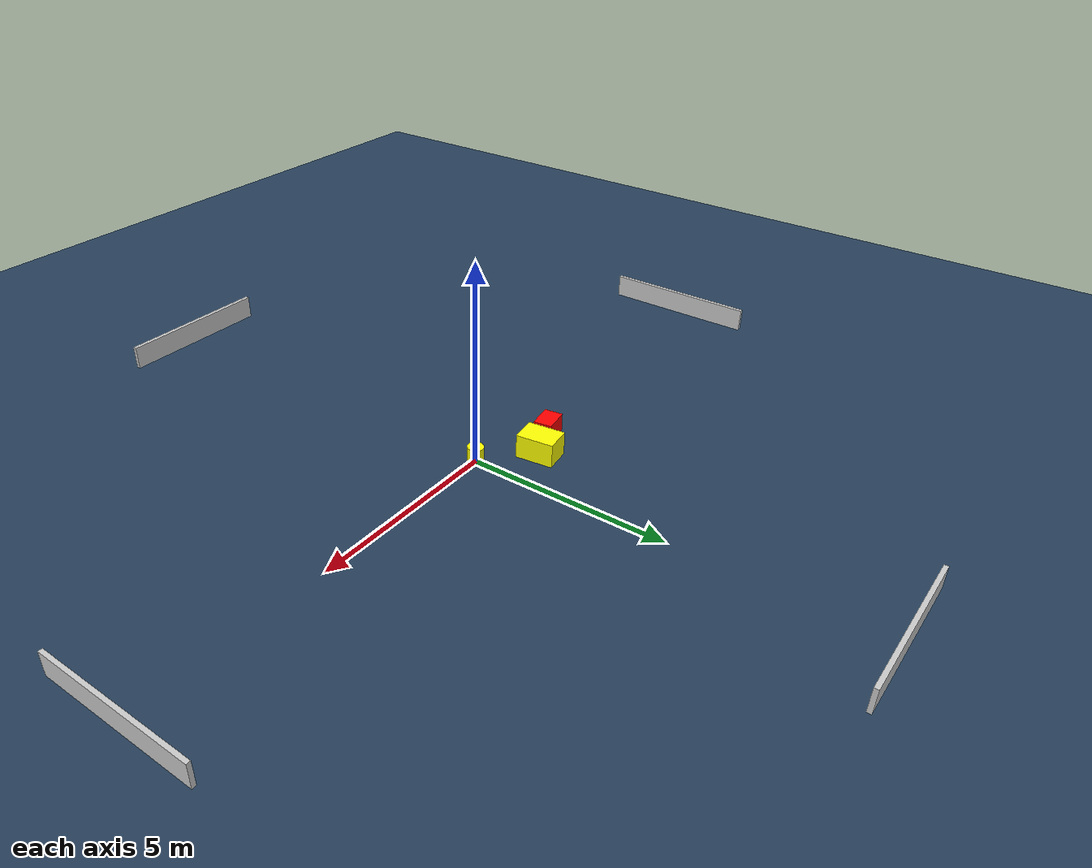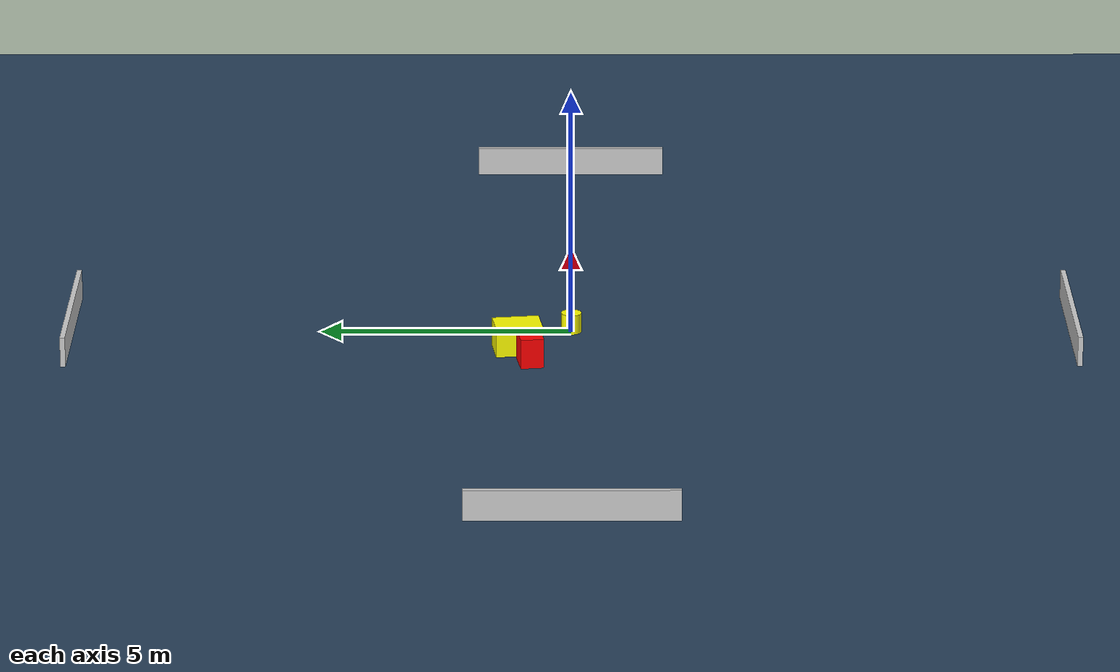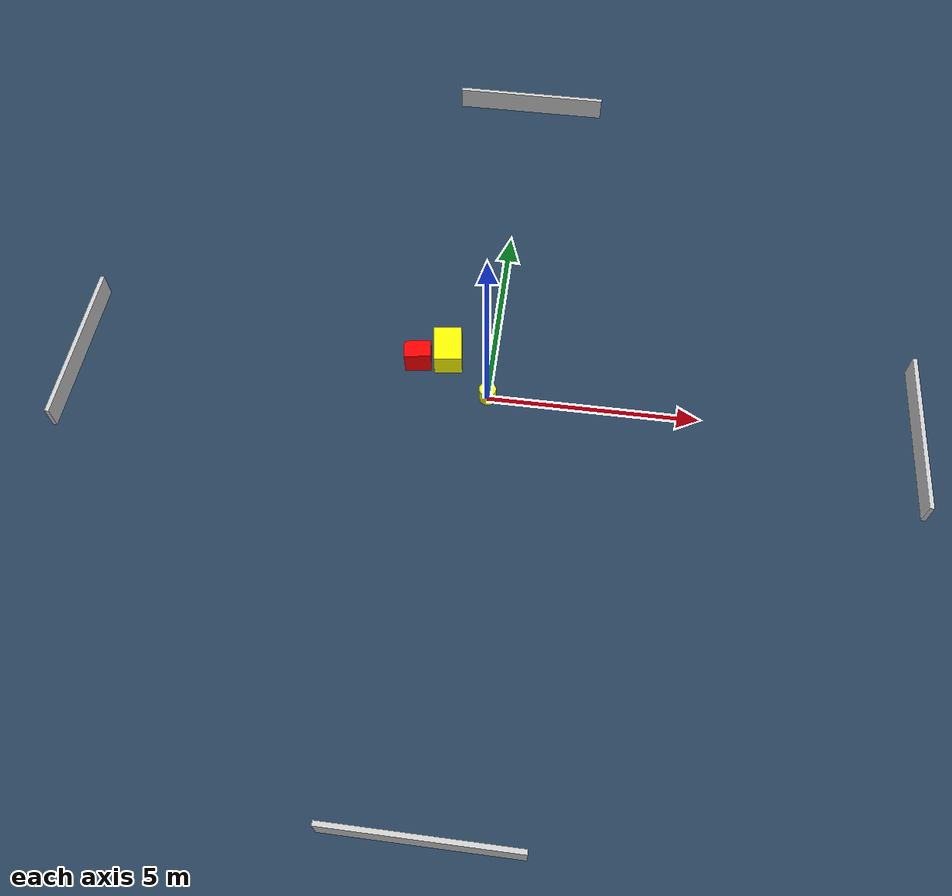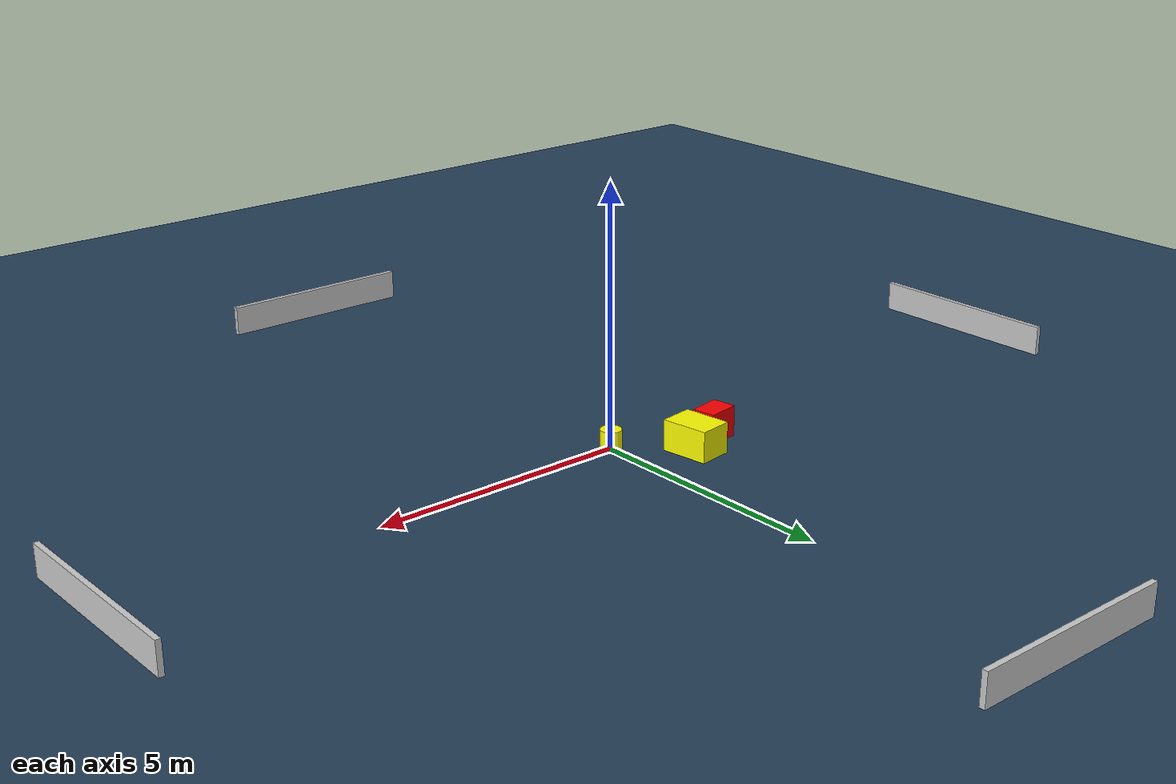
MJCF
<?xml version="1.0" ?>
<mujoco model="generated_environment">
  <option timestep="0.01" integrator="RK4" cone="elliptic"/>
  <default>
    <geom density="1"/>
  </default>
  <asset>
    <texture builtin="gradient" height="3072" name="skybox" rgb1="0.3 0.5 0.7" rgb2="0 0 0" type="skybox" width="512"/>
    <texture builtin="checker" height="300" name="groundplane" rgb1="0.2 0.3 0.4" rgb2="0.1 0.2 0.3" type="2d" width="300"/>
    <material name="groundplane" reflectance="0.2" texrepeat="5 5" texture="groundplane"/>
  </asset>
  <worldbody>
    <light dir="0 0 -1" directional="true" pos="0 0 1.5"/>
    <geom condim="3" friction="0.5 0.005 0.001" material="groundplane" name="floor" pos="0 0 0" size="0 0 0.05" type="plane"/>
    <body name="walls">
      <geom name="wall_1" condim="4" pos="-10.0 0.0 0.3" rgba="0.800000011920929 0.800000011920929 0.800000011920929 1.0" size="0.05 2.0 0.3" type="box"/>
      <geom name="wall_2" condim="4" pos="10.0 0.0 0.3" rgba="0.800000011920929 0.800000011920929 0.800000011920929 1.0" size="0.05 2.0 0.3" type="box"/>
      <geom name="wall_3" condim="4" pos="0.0 -10.0 0.3" rgba="0.800000011920929 0.800000011920929 0.800000011920929 1.0" size="2.0 0.05 0.3" type="box"/>
      <geom name="wall_4" condim="4" pos="0.0 10.0 0.3" rgba="0.800000011920929 0.800000011920929 0.800000011920929 1.0" size="2.0 0.05 0.3" type="box"/>
    </body>
    <body name="robot">
      <joint name="joint_x" type="slide" pos="0 0 0" axis="1 0 0"/>
      <joint name="joint_y" type="slide" pos="0 0 0" axis="0 1 0"/>
      <geom name="robot" type="cylinder" pos="0.0 0.0 0.2" size="0.2 0.2 0.0" mass="5.0" friction="1.0 0.005 0.0001" condim="4" rgba="1.0 1.0 0.0 1.0"/>
    </body>
    <body name="obstacle_1_movable">
      <geom name="obstacle_1_movable" condim="4" pos="-1.1028809132564728 1.0698277477823526 0.3" euler="0 0 7.687494123755991" friction="0.0 0.005 0.001" rgba="1.0 1.0 0.0 1.0" size="0.33417918271634905 0.46538962463542305 0.3" type="box" mass="0.1"/>
      <joint type="free"/>
    </body>
    <body name="obstacle_2_static">
      <geom name="obstacle_2_static" condim="4" pos="-1.7997566363424087 0.8148696438127587 0.3" euler="0 0 278.7383384790329" friction="0.0 0.005 0.001" rgba="1.0 0.0 0.0 1.0" size="0.2292801557158356 0.3191767737270411 0.3" type="box"/>
    </body>
  </worldbody>
  <actuator>
    <motor name="actuator_x" joint="joint_x" gear="1" ctrlrange="-1 1"/>
    <motor name="actuator_y" joint="joint_y" gear="1" ctrlrange="-1 1"/>
  </actuator>
</mujoco>
